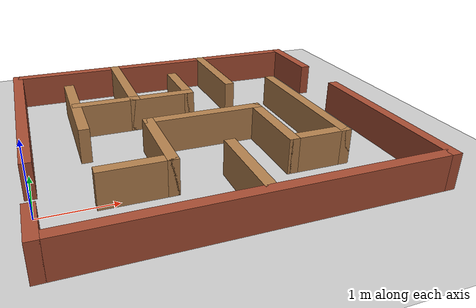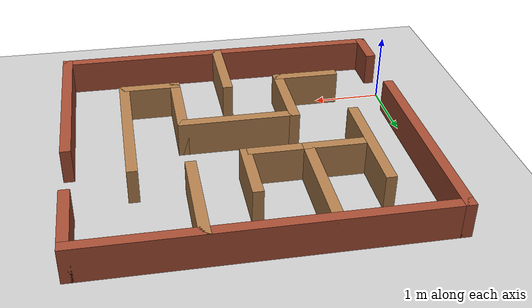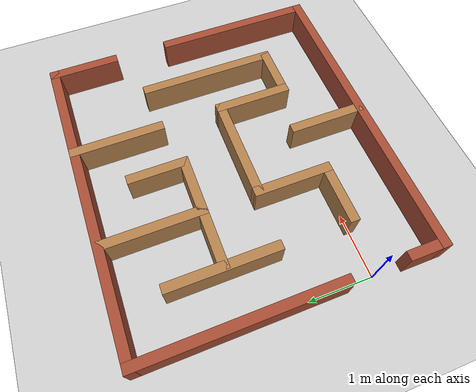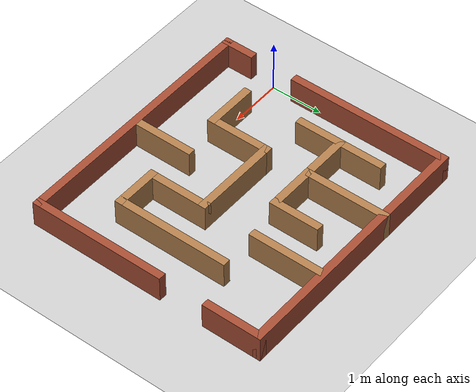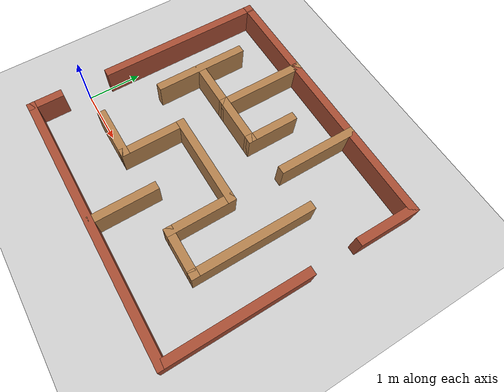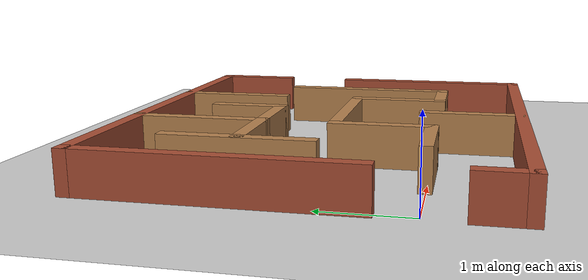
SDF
<sdf version="1.7">
 <world name="default">
  <light name="sun" type="directional">
   <pose>0 0 10 0 -0 0</pose>
   <diffuse>0.8 0.8 0.8 1</diffuse>
   <specular>0.2 0.2 0.2 1</specular>
   <attenuation>
    <range>1000</range>
    <constant>0.9</constant>
    <linear>0.01</linear>
    <quadratic>0.001</quadratic>
   </attenuation>
   <direction>-0.5 0.1 -0.9</direction>
   <spot><inner_angle>0</inner_angle><outer_angle>0</outer_angle><falloff>0</falloff></spot>
  </light>
  <model name="ground_plane">
   <static>1</static>
   <link name="link">
    <collision name="collision">
     <geometry><plane><normal>0 0 1</normal><size>100 100</size></plane></geometry>
     <surface>
      <contact><collide_bitmask>65535</collide_bitmask></contact>
      <friction><ode><mu>100</mu><mu2>50</mu2></ode></friction>
     </surface>
    </collision>
    <visual name="visual">
     <cast_shadows>0</cast_shadows>
     <geometry><plane><normal>0 0 1</normal><size>100 100</size></plane></geometry>
     <material>
      <script><uri>file://media/materials/scripts/gazebo.material</uri><name>Gazebo/Grey</name></script>
     </material>
    </visual>
   </link>
  </model>
  <gravity>0 0 -9.8</gravity>
  <magnetic_field>6e-06 2.3e-05 -4.2e-05</magnetic_field>
  <atmosphere type="adiabatic"/>
  <physics type="ode">
   <max_step_size>0.001</max_step_size>
   <real_time_factor>1</real_time_factor>
   <real_time_update_rate>1000</real_time_update_rate>
  </physics>
  <scene><ambient>0.4 0.4 0.4 1</ambient><background>0.7 0.7 0.7 1</background><shadows>1</shadows></scene>
  <spherical_coordinates>
   <surface_model>EARTH_WGS84</surface_model>
   <latitude_deg>0</latitude_deg>
   <longitude_deg>0</longitude_deg>
   <elevation>0</elevation>
   <heading_deg>0</heading_deg>
  </spherical_coordinates>
  <model name="maze_01">
   <pose>2.425 1.25 0 0 -0 0</pose>
   <link name="Wall_0">
    <collision name="Wall_0_Collision">
     <geometry><box><size>0.65 0.15 0.5</size></box></geometry>
     <pose>0 0 0.25 0 -0 0</pose>
    </collision>
    <visual name="Wall_0_Visual">
     <pose>0 0 0.25 0 -0 0</pose>
     <geometry><box><size>0.65 0.15 0.5</size></box></geometry>
     <material>
      <script><uri>file://media/materials/scripts/gazebo.material</uri><name>Gazebo/Bricks</name></script>
      <ambient>1 1 1 1</ambient>
     </material>
     <meta><layer>0</layer></meta>
    </visual>
    <pose>-2.425 -2 0 0 -0 1.5708</pose>
   </link>
   <link name="Wall_10">
    <collision name="Wall_10_Collision">
     <geometry><box><size>5 0.15 0.5</size></box></geometry>
     <pose>0 0 0.25 0 -0 0</pose>
    </collision>
    <visual name="Wall_10_Visual">
     <pose>0 0 0.25 0 -0 0</pose>
     <geometry><box><size>5 0.15 0.5</size></box></geometry>
     <material>
      <script><uri>file://media/materials/scripts/gazebo.material</uri><name>Gazebo/Bricks</name></script>
      <ambient>1 1 1 1</ambient>
     </material>
     <meta><layer>0</layer></meta>
    </visual>
    <pose>-0 -2.25 0 0 -0 0</pose>
   </link>
   <link name="Wall_11">
    <collision name="Wall_11_Collision">
     <geometry><box><size>2.65 0.15 0.5</size></box></geometry>
     <pose>0 0 0.25 0 -0 0</pose>
    </collision>
    <visual name="Wall_11_Visual">
     <pose>0 0 0.25 0 -0 0</pose>
     <geometry><box><size>2.65 0.15 0.5</size></box></geometry>
     <material>
      <script><uri>file://media/materials/scripts/gazebo.material</uri><name>Gazebo/Bricks</name></script>
      <ambient>1 1 1 1</ambient>
     </material>
     <meta><layer>0</layer></meta>
    </visual>
    <pose>2.425 -1 0 0 -0 1.5708</pose>
   </link>
   <link name="Wall_13">
    <collision name="Wall_13_Collision">
     <geometry><box><size>1.75 0.15 0.5</size></box></geometry>
     <pose>0 0 0.25 0 -0 0</pose>
    </collision>
    <visual name="Wall_13_Visual">
     <pose>0 0 0.25 0 -0 0</pose>
     <geometry><box><size>1.75 0.15 0.5</size></box></geometry>
     <material>
      <script><uri>file://media/materials/scripts/gazebo.material</uri><name>Gazebo/Wood</name></script>
      <ambient>1 1 1 1</ambient>
     </material>
     <meta><layer>0</layer></meta>
    </visual>
    <pose>-1.663 0.732 0 0 -0 -1.5708</pose>
   </link>
   <link name="Wall_15">
    <collision name="Wall_15_Collision">
     <geometry><box><size>1 0.15 0.5</size></box></geometry>
     <pose>0 0 0.25 0 -0 0</pose>
    </collision>
    <visual name="Wall_15_Visual">
     <pose>0 0 0.25 0 -0 0</pose>
     <geometry><box><size>1 0.15 0.5</size></box></geometry>
     <material>
      <script><uri>file://media/materials/scripts/gazebo.material</uri><name>Gazebo/Wood</name></script>
      <ambient>1 1 1 1</ambient>
     </material>
     <meta><layer>0</layer></meta>
    </visual>
    <pose>-1.215 0.723 0 0 -0 0</pose>
   </link>
   <link name="Wall_17">
    <collision name="Wall_17_Collision">
     <geometry><box><size>1.677 0.15 0.5</size></box></geometry>
     <pose>0 0 0.25 0 -0 0</pose>
    </collision>
    <visual name="Wall_17_Visual">
     <pose>0 0 0.25 0 -0 0</pose>
     <geometry><box><size>1.677 0.15 0.5</size></box></geometry>
     <material>
      <script><uri>file://media/materials/scripts/gazebo.material</uri><name>Gazebo/Wood</name></script>
      <ambient>1 1 1 1</ambient>
     </material>
     <meta><layer>0</layer></meta>
    </visual>
    <pose>-0.79 1.4865 0 0 -0 1.5708</pose>
   </link>
   <link name="Wall_19">
    <collision name="Wall_19_Collision">
     <geometry><box><size>1 0.15 0.5</size></box></geometry>
     <pose>0 0 0.25 0 -0 0</pose>
    </collision>
    <visual name="Wall_19_Visual">
     <pose>0 0 0.25 0 -0 0</pose>
     <geometry><box><size>1 0.15 0.5</size></box></geometry>
     <material>
      <script><uri>file://media/materials/scripts/gazebo.material</uri><name>Gazebo/Wood</name></script>
      <ambient>1 1 1 1</ambient>
     </material>
     <meta><layer>0</layer></meta>
    </visual>
    <pose>-1.215 -1.243 0 0 -0 0</pose>
   </link>
   <link name="Wall_2">
    <collision name="Wall_2_Collision">
     <geometry><box><size>3.15 0.15 0.5</size></box></geometry>
     <pose>0 0 0.25 0 -0 0</pose>
    </collision>
    <visual name="Wall_2_Visual">
     <pose>0 0 0.25 0 -0 0</pose>
     <geometry><box><size>3.15 0.15 0.5</size></box></geometry>
     <material>
      <script><uri>file://media/materials/scripts/gazebo.material</uri><name>Gazebo/Bricks</name></script>
      <ambient>1 1 1 1</ambient>
     </material>
     <meta><layer>0</layer></meta>
    </visual>
    <pose>-2.425 0.75 0 0 -0 -1.5708</pose>
   </link>
   <link name="Wall_20">
    <collision name="Wall_20_Collision">
     <geometry><box><size>1.25 0.15 0.5</size></box></geometry>
     <pose>0 0 0.25 0 -0 0</pose>
    </collision>
    <visual name="Wall_20_Visual">
     <pose>0 0 0.25 0 -0 0</pose>
     <geometry><box><size>1.25 0.15 0.5</size></box></geometry>
     <material>
      <script><uri>file://media/materials/scripts/gazebo.material</uri><name>Gazebo/Wood</name></script>
      <ambient>1 1 1 1</ambient>
     </material>
     <meta><layer>0</layer></meta>
    </visual>
    <pose>-0.79 -0.693 0 0 -0 1.5708</pose>
   </link>
   <link name="Wall_21">
    <collision name="Wall_21_Collision">
     <geometry><box><size>1.75 0.15 0.5</size></box></geometry>
     <pose>0 0 0.25 0 -0 0</pose>
    </collision>
    <visual name="Wall_21_Visual">
     <pose>0 0 0.25 0 -0 0</pose>
     <geometry><box><size>1.75 0.15 0.5</size></box></geometry>
     <material>
      <script><uri>file://media/materials/scripts/gazebo.material</uri><name>Gazebo/Wood</name></script>
      <ambient>1 1 1 1</ambient>
     </material>
     <meta><layer>0</layer></meta>
    </visual>
    <pose>0.01 -0.143 0 0 -0 0</pose>
   </link>
   <link name="Wall_22">
    <collision name="Wall_22_Collision">
     <geometry><box><size>1.25 0.15 0.5</size></box></geometry>
     <pose>0 0 0.25 0 -0 0</pose>
    </collision>
    <visual name="Wall_22_Visual">
     <pose>0 0 0.25 0 -0 0</pose>
     <geometry><box><size>1.25 0.15 0.5</size></box></geometry>
     <material>
      <script><uri>file://media/materials/scripts/gazebo.material</uri><name>Gazebo/Wood</name></script>
      <ambient>1 1 1 1</ambient>
     </material>
     <meta><layer>0</layer></meta>
    </visual>
    <pose>0.81 -0.693 0 0 -0 -1.5708</pose>
   </link>
   <link name="Wall_23">
    <collision name="Wall_23_Collision">
     <geometry><box><size>0.915 0.15 0.5</size></box></geometry>
     <pose>0 0 0.25 0 -0 0</pose>
    </collision>
    <visual name="Wall_23_Visual">
     <pose>0 0 0.25 0 -0 0</pose>
     <geometry><box><size>0.915 0.15 0.5</size></box></geometry>
     <material>
      <script><uri>file://media/materials/scripts/gazebo.material</uri><name>Gazebo/Wood</name></script>
      <ambient>1 1 1 1</ambient>
     </material>
     <meta><layer>0</layer></meta>
    </visual>
    <pose>1.1925 -1.243 0 0 -0 0</pose>
   </link>
   <link name="Wall_24">
    <collision name="Wall_24_Collision">
     <geometry><box><size>2.25 0.15 0.5</size></box></geometry>
     <pose>0 0 0.25 0 -0 0</pose>
    </collision>
    <visual name="Wall_24_Visual">
     <pose>0 0 0.25 0 -0 0</pose>
     <geometry><box><size>2.25 0.15 0.5</size></box></geometry>
     <material>
      <script><uri>file://media/materials/scripts/gazebo.material</uri><name>Gazebo/Wood</name></script>
      <ambient>1 1 1 1</ambient>
     </material>
     <meta><layer>0</layer></meta>
    </visual>
    <pose>1.575 -0.193 0 0 -0 1.5708</pose>
   </link>
   <link name="Wall_27">
    <collision name="Wall_27_Collision">
     <geometry><box><size>1.25 0.15 0.5</size></box></geometry>
     <pose>0 0 0.25 0 -0 0</pose>
    </collision>
    <visual name="Wall_27_Visual">
     <pose>0 0 0.25 0 -0 0</pose>
     <geometry><box><size>1.25 0.15 0.5</size></box></geometry>
     <material>
      <script><uri>file://media/materials/scripts/gazebo.material</uri><name>Gazebo/Wood</name></script>
      <ambient>1 1 1 1</ambient>
     </material>
     <meta><layer>0</layer></meta>
    </visual>
    <pose>0.026 -1.665 0 0 -0 1.5708</pose>
   </link>
   <link name="Wall_30">
    <collision name="Wall_30_Collision">
     <geometry><box><size>1 0.15 0.5</size></box></geometry>
     <pose>0 0 0.25 0 -0 0</pose>
    </collision>
    <visual name="Wall_30_Visual">
     <pose>0 0 0.25 0 -0 0</pose>
     <geometry><box><size>1 0.15 0.5</size></box></geometry>
     <material>
      <script><uri>file://media/materials/scripts/gazebo.material</uri><name>Gazebo/Wood</name></script>
      <ambient>1 1 1 1</ambient>
     </material>
     <meta><layer>0</layer></meta>
    </visual>
    <pose>-0.365 0.723 0 0 -0 0</pose>
   </link>
   <link name="Wall_31">
    <collision name="Wall_31_Collision">
     <geometry><box><size>0.977 0.15 0.5</size></box></geometry>
     <pose>0 0 0.25 0 -0 0</pose>
    </collision>
    <visual name="Wall_31_Visual">
     <pose>0 0 0.25 0 -0 0</pose>
     <geometry><box><size>0.977 0.15 0.5</size></box></geometry>
     <material>
      <script><uri>file://media/materials/scripts/gazebo.material</uri><name>Gazebo/Wood</name></script>
      <ambient>1 1 1 1</ambient>
     </material>
     <meta><layer>0</layer></meta>
    </visual>
    <pose>0.06 1.1365 0 0 -0 1.5708</pose>
   </link>
   <link name="Wall_33">
    <collision name="Wall_33_Collision">
     <geometry><box><size>1.5 0.15 0.5</size></box></geometry>
     <pose>0 0 0.25 0 -0 0</pose>
    </collision>
    <visual name="Wall_33_Visual">
     <pose>0 0 0.25 0 -0 0</pose>
     <geometry><box><size>1.5 0.15 0.5</size></box></geometry>
     <material>
      <script><uri>file://media/materials/scripts/gazebo.material</uri><name>Gazebo/Wood</name></script>
      <ambient>1 1 1 1</ambient>
     </material>
     <meta><layer>0</layer></meta>
    </visual>
    <pose>0.812 1.574 0 0 -0 -1.5708</pose>
   </link>
   <link name="Wall_7">
    <collision name="Wall_7_Collision">
     <geometry><box><size>5 0.15 0.5</size></box></geometry>
     <pose>0 0 0.25 0 -0 0</pose>
    </collision>
    <visual name="Wall_7_Visual">
     <pose>0 0 0.25 0 -0 0</pose>
     <geometry><box><size>5 0.15 0.5</size></box></geometry>
     <material>
      <script><uri>file://media/materials/scripts/gazebo.material</uri><name>Gazebo/Bricks</name></script>
      <ambient>1 1 1 1</ambient>
     </material>
     <meta><layer>0</layer></meta>
    </visual>
    <pose>-0 2.25 0 0 -0 0</pose>
   </link>
   <link name="Wall_8">
    <collision name="Wall_8_Collision">
     <geometry><box><size>1.15 0.15 0.5</size></box></geometry>
     <pose>0 0 0.25 0 -0 0</pose>
    </collision>
    <visual name="Wall_8_Visual">
     <pose>0 0 0.25 0 -0 0</pose>
     <geometry><box><size>1.15 0.15 0.5</size></box></geometry>
     <material>
      <script><uri>file://media/materials/scripts/gazebo.material</uri><name>Gazebo/Bricks</name></script>
      <ambient>1 1 1 1</ambient>
     </material>
     <meta><layer>0</layer></meta>
    </visual>
    <pose>2.425 1.75 0 0 -0 -1.5708</pose>
   </link>
   <static>1</static>
  </model>
 </world>
</sdf>
